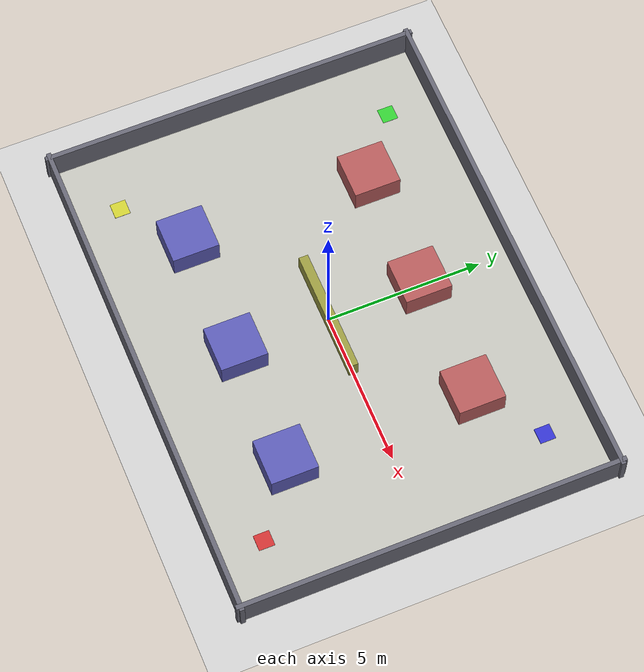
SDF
<?xml version="1.0"?>
<sdf version="1.6">
    <world name="mapf_arena">

        <!-- ==================== LIGHTING ==================== -->
        <include>
            <uri>model://sun</uri>
        </include>

        <include>
            <uri>model://ground_plane</uri>
        </include>

        <scene>
            <ambient>0.6 0.6 0.6 1.0</ambient>
            <background>0.85 0.9 0.95 1.0</background>
            <shadows>true</shadows>
        </scene>

        <!-- ==================== ARENA FLOOR ==================== -->
        <model name="arena_floor">
            <static>true</static>
            <link name="link">
                <collision name="collision">
                    <geometry>
                        <box>
                            <size>16 12 0.01</size>
                        </box>
                    </geometry>
                </collision>
                <visual name="visual">
                    <geometry>
                        <box>
                            <size>16 12 0.01</size>
                        </box>
                    </geometry>
                    <material>
                        <ambient>0.75 0.75 0.72 1</ambient>
                        <diffuse>0.75 0.75 0.72 1</diffuse>
                    </material>
                </visual>
            </link>
            <pose>0 0 0.005 0 0 0</pose>
        </model>

        <!-- ==================== PERIMETER WALLS ==================== -->
        <model name="wall_north">
            <static>true</static>
            <link name="link">
                <collision name="c">
                    <geometry>
                        <box>
                            <size>16.3 0.15 1.0</size>
                        </box>
                    </geometry>
                </collision>
                <visual name="v">
                    <geometry>
                        <box>
                            <size>16.3 0.15 1.0</size>
                        </box>
                    </geometry>
                    <material>
                        <ambient>0.4 0.4 0.45 1</ambient>
                        <diffuse>0.4 0.4 0.45 1</diffuse>
                    </material>
                </visual>
            </link>
            <pose>0 6 0.5 0 0 0</pose>
        </model>
        <model name="wall_south">
            <static>true</static>
            <link name="link">
                <collision name="c">
                    <geometry>
                        <box>
                            <size>16.3 0.15 1.0</size>
                        </box>
                    </geometry>
                </collision>
                <visual name="v">
                    <geometry>
                        <box>
                            <size>16.3 0.15 1.0</size>
                        </box>
                    </geometry>
                    <material>
                        <ambient>0.4 0.4 0.45 1</ambient>
                        <diffuse>0.4 0.4 0.45 1</diffuse>
                    </material>
                </visual>
            </link>
            <pose>0 -6 0.5 0 0 0</pose>
        </model>
        <model name="wall_east">
            <static>true</static>
            <link name="link">
                <collision name="c">
                    <geometry>
                        <box>
                            <size>0.15 12.3 1.0</size>
                        </box>
                    </geometry>
                </collision>
                <visual name="v">
                    <geometry>
                        <box>
                            <size>0.15 12.3 1.0</size>
                        </box>
                    </geometry>
                    <material>
                        <ambient>0.4 0.4 0.45 1</ambient>
                        <diffuse>0.4 0.4 0.45 1</diffuse>
                    </material>
                </visual>
            </link>
            <pose>8 0 0.5 0 0 0</pose>
        </model>
        <model name="wall_west">
            <static>true</static>
            <link name="link">
                <collision name="c">
                    <geometry>
                        <box>
                            <size>0.15 12.3 1.0</size>
                        </box>
                    </geometry>
                </collision>
                <visual name="v">
                    <geometry>
                        <box>
                            <size>0.15 12.3 1.0</size>
                        </box>
                    </geometry>
                    <material>
                        <ambient>0.4 0.4 0.45 1</ambient>
                        <diffuse>0.4 0.4 0.45 1</diffuse>
                    </material>
                </visual>
            </link>
            <pose>-8 0 0.5 0 0 0</pose>
        </model>

        <!-- ==================== OBSTACLE PILLARS (Row 1, y=3) ==================== -->
        <model name="pillar_1">
            <static>true</static>
            <link name="link">
                <collision name="c">
                    <geometry>
                        <box>
                            <size>1.5 1.5 0.8</size>
                        </box>
                    </geometry>
                </collision>
                <visual name="v">
                    <geometry>
                        <box>
                            <size>1.5 1.5 0.8</size>
                        </box>
                    </geometry>
                    <material>
                        <ambient>0.6 0.3 0.3 1</ambient>
                        <diffuse>0.7 0.35 0.35 1</diffuse>
                    </material>
                </visual>
            </link>
            <pose>-4 3 0.4 0 0 0</pose>
        </model>
        <model name="pillar_2">
            <static>true</static>
            <link name="link">
                <collision name="c">
                    <geometry>
                        <box>
                            <size>1.5 1.5 0.8</size>
                        </box>
                    </geometry>
                </collision>
                <visual name="v">
                    <geometry>
                        <box>
                            <size>1.5 1.5 0.8</size>
                        </box>
                    </geometry>
                    <material>
                        <ambient>0.6 0.3 0.3 1</ambient>
                        <diffuse>0.7 0.35 0.35 1</diffuse>
                    </material>
                </visual>
            </link>
            <pose>0 3 0.4 0 0 0</pose>
        </model>
        <model name="pillar_3">
            <static>true</static>
            <link name="link">
                <collision name="c">
                    <geometry>
                        <box>
                            <size>1.5 1.5 0.8</size>
                        </box>
                    </geometry>
                </collision>
                <visual name="v">
                    <geometry>
                        <box>
                            <size>1.5 1.5 0.8</size>
                        </box>
                    </geometry>
                    <material>
                        <ambient>0.6 0.3 0.3 1</ambient>
                        <diffuse>0.7 0.35 0.35 1</diffuse>
                    </material>
                </visual>
            </link>
            <pose>4 3 0.4 0 0 0</pose>
        </model>

        <!-- ==================== OBSTACLE PILLARS (Row 2, y=-3) ==================== -->
        <model name="pillar_4">
            <static>true</static>
            <link name="link">
                <collision name="c">
                    <geometry>
                        <box>
                            <size>1.5 1.5 0.8</size>
                        </box>
                    </geometry>
                </collision>
                <visual name="v">
                    <geometry>
                        <box>
                            <size>1.5 1.5 0.8</size>
                        </box>
                    </geometry>
                    <material>
                        <ambient>0.3 0.3 0.6 1</ambient>
                        <diffuse>0.35 0.35 0.7 1</diffuse>
                    </material>
                </visual>
            </link>
            <pose>-4 -3 0.4 0 0 0</pose>
        </model>
        <model name="pillar_5">
            <static>true</static>
            <link name="link">
                <collision name="c">
                    <geometry>
                        <box>
                            <size>1.5 1.5 0.8</size>
                        </box>
                    </geometry>
                </collision>
                <visual name="v">
                    <geometry>
                        <box>
                            <size>1.5 1.5 0.8</size>
                        </box>
                    </geometry>
                    <material>
                        <ambient>0.3 0.3 0.6 1</ambient>
                        <diffuse>0.35 0.35 0.7 1</diffuse>
                    </material>
                </visual>
            </link>
            <pose>0 -3 0.4 0 0 0</pose>
        </model>
        <model name="pillar_6">
            <static>true</static>
            <link name="link">
                <collision name="c">
                    <geometry>
                        <box>
                            <size>1.5 1.5 0.8</size>
                        </box>
                    </geometry>
                </collision>
                <visual name="v">
                    <geometry>
                        <box>
                            <size>1.5 1.5 0.8</size>
                        </box>
                    </geometry>
                    <material>
                        <ambient>0.3 0.3 0.6 1</ambient>
                        <diffuse>0.35 0.35 0.7 1</diffuse>
                    </material>
                </visual>
            </link>
            <pose>4 -3 0.4 0 0 0</pose>
        </model>

        <!-- ==================== CENTRAL BARRIER WALL ==================== -->
        <model name="barrier_center">
            <static>true</static>
            <link name="link">
                <collision name="c">
                    <geometry>
                        <box>
                            <size>4.0 0.3 0.6</size>
                        </box>
                    </geometry>
                </collision>
                <visual name="v">
                    <geometry>
                        <box>
                            <size>4.0 0.3 0.6</size>
                        </box>
                    </geometry>
                    <material>
                        <ambient>0.5 0.5 0.2 1</ambient>
                        <diffuse>0.6 0.6 0.25 1</diffuse>
                    </material>
                </visual>
            </link>
            <pose>0 0 0.3 0 0 0</pose>
        </model>

        <!-- ==================== CORRIDOR MARKERS (visual only, no collision) ==================== -->
        <model name="zone_A">
            <static>true</static>
            <link name="link">
                <visual name="v">
                    <geometry>
                        <box>
                            <size>0.5 0.5 0.02</size>
                        </box>
                    </geometry>
                    <material>
                        <ambient>0.2 0.7 0.2 1</ambient>
                        <diffuse>0.2 0.8 0.2 1</diffuse>
                    </material>
                </visual>
            </link>
            <pose>-6 4.5 0.015 0 0 0</pose>
        </model>
        <model name="zone_B">
            <static>true</static>
            <link name="link">
                <visual name="v">
                    <geometry>
                        <box>
                            <size>0.5 0.5 0.02</size>
                        </box>
                    </geometry>
                    <material>
                        <ambient>0.2 0.2 0.7 1</ambient>
                        <diffuse>0.2 0.2 0.8 1</diffuse>
                    </material>
                </visual>
            </link>
            <pose>6 4.5 0.015 0 0 0</pose>
        </model>
        <model name="zone_C">
            <static>true</static>
            <link name="link">
                <visual name="v">
                    <geometry>
                        <box>
                            <size>0.5 0.5 0.02</size>
                        </box>
                    </geometry>
                    <material>
                        <ambient>0.7 0.2 0.2 1</ambient>
                        <diffuse>0.8 0.2 0.2 1</diffuse>
                    </material>
                </visual>
            </link>
            <pose>6 -4.5 0.015 0 0 0</pose>
        </model>
        <model name="zone_D">
            <static>true</static>
            <link name="link">
                <visual name="v">
                    <geometry>
                        <box>
                            <size>0.5 0.5 0.02</size>
                        </box>
                    </geometry>
                    <material>
                        <ambient>0.7 0.7 0.2 1</ambient>
                        <diffuse>0.8 0.8 0.2 1</diffuse>
                    </material>
                </visual>
            </link>
            <pose>-6 -4.5 0.015 0 0 0</pose>
        </model>

        <physics type="ode">
            <max_step_size>0.002</max_step_size>
            <real_time_factor>1.0</real_time_factor>
            <real_time_update_rate>500</real_time_update_rate>
        </physics>

    </world>
</sdf>
